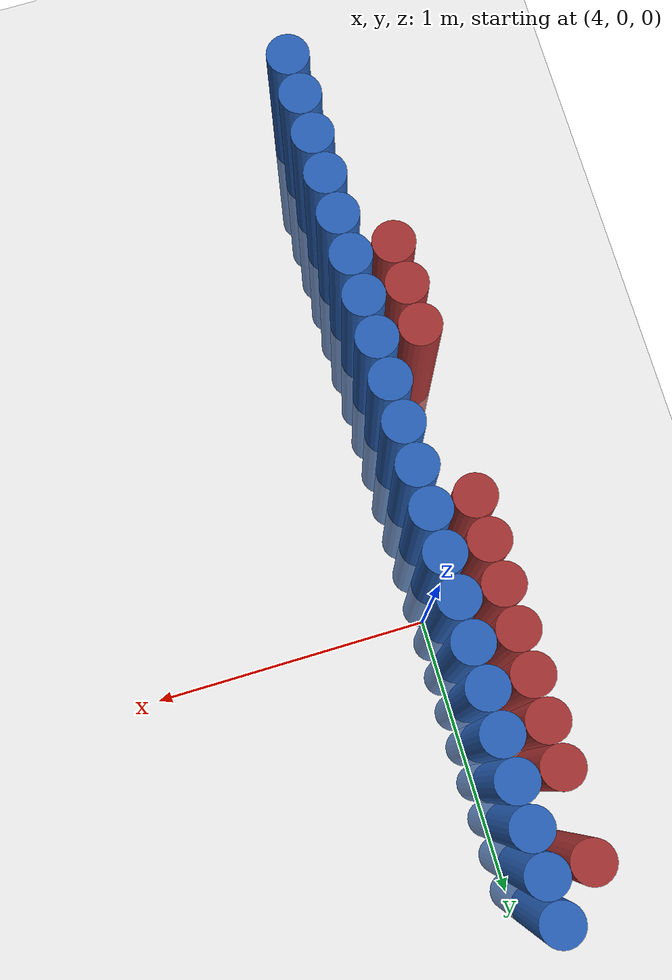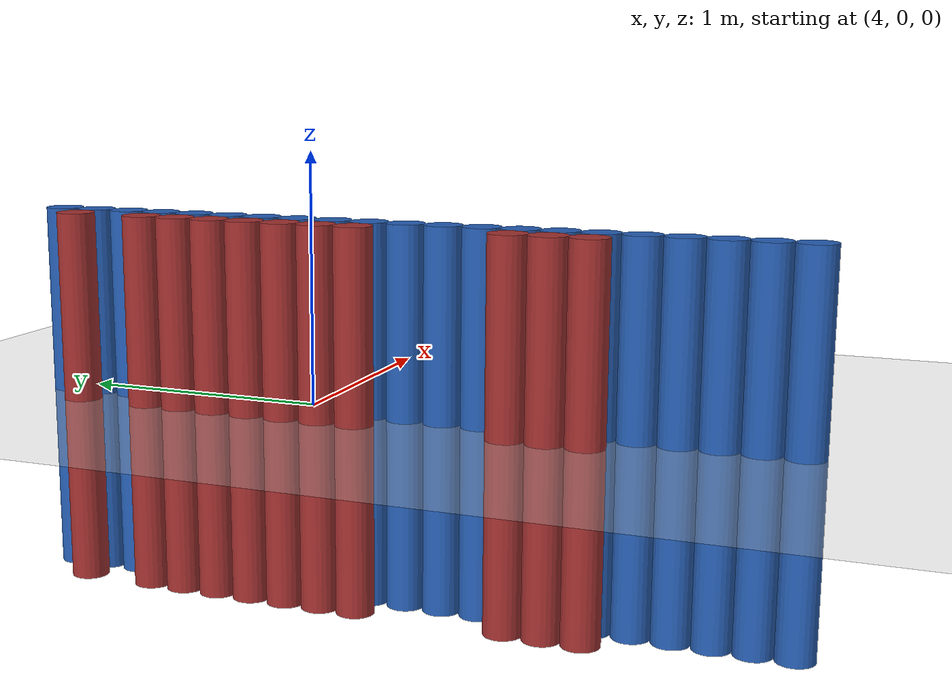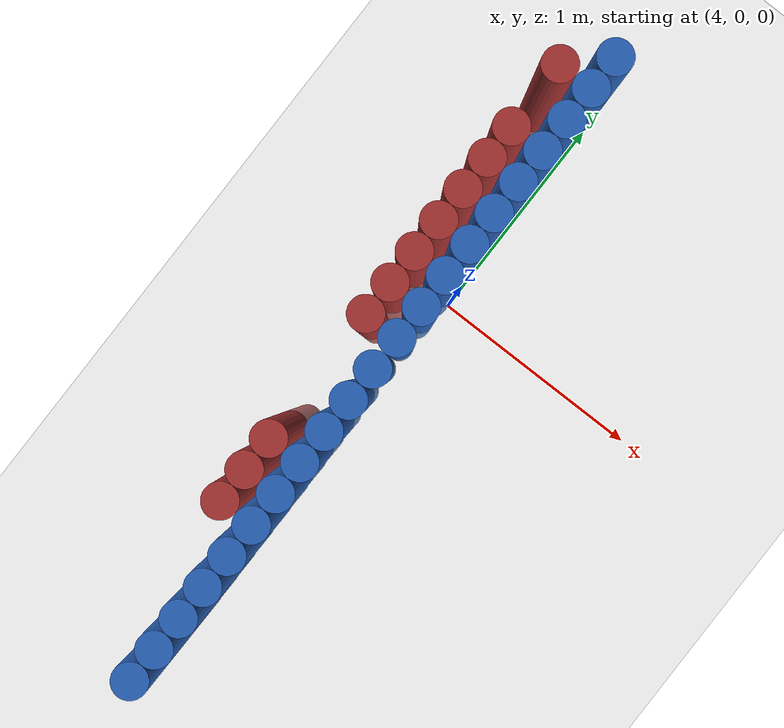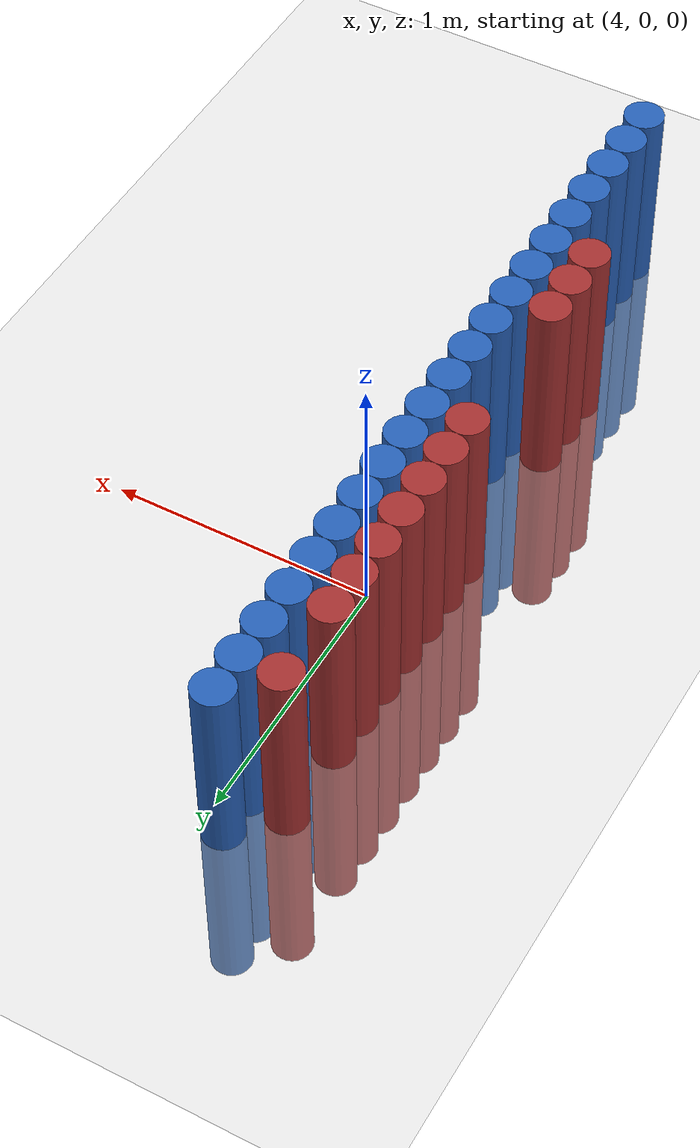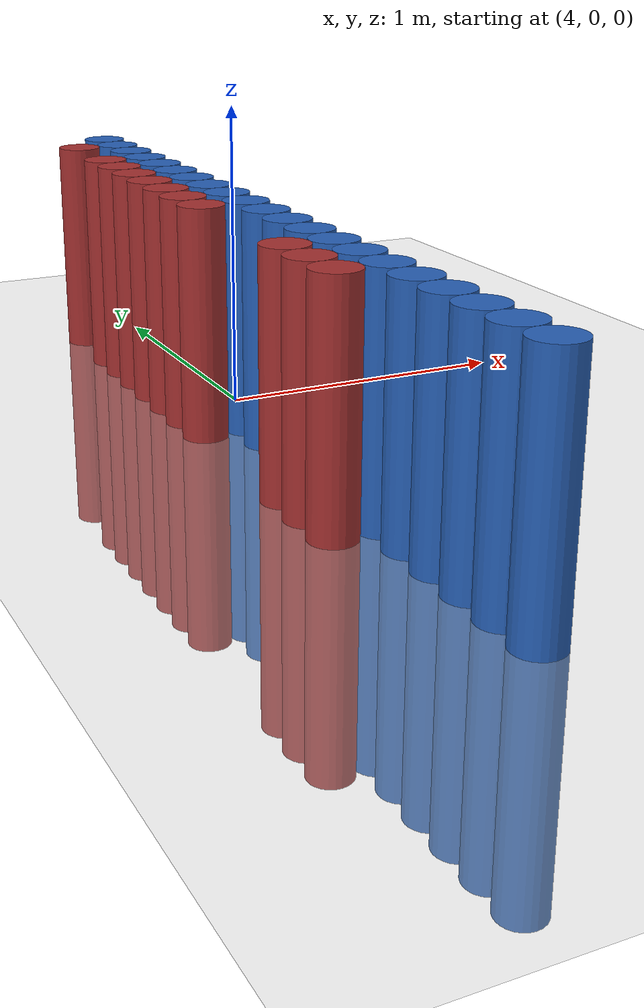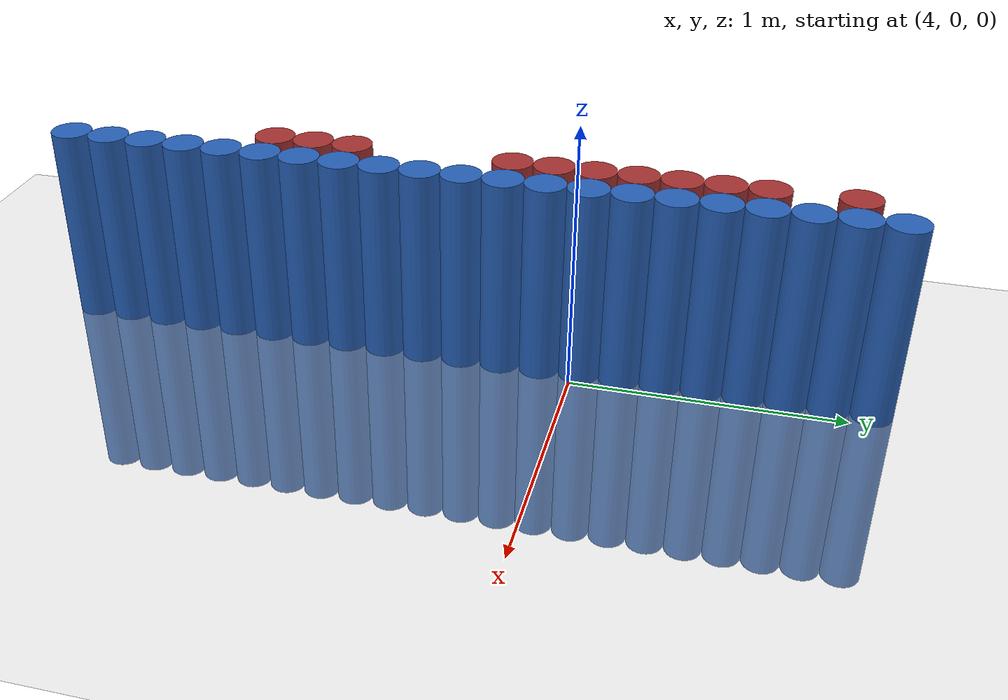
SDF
<sdf version="1.6">
 <world name="default">
  <model name="ground_plane">
   <static>1</static>
   <link name="link">
    <collision name="collision">
     <geometry><plane><normal>0 0 1</normal><size>100 100</size></plane></geometry>
     <surface><friction><ode><mu>100</mu><mu2>50</mu2></ode></friction></surface>
    </collision>
    <visual name="visual">
     <cast_shadows>0</cast_shadows>
     <geometry><plane><normal>0 0 1</normal><size>100 100</size></plane></geometry>
     <material>
      <script><uri>file://media/materials/scripts/gazebo.material</uri><name>Gazebo/Grey</name></script>
     </material>
    </visual>
   </link>
  </model>
  <model name="unit_cylinder_88">
   <static>1</static>
   <pose>3.925000 -1.925000 0.000000 0.000000 0.000000 0.000000</pose>
   <link name="link">
    <inertial>
     <mass>1</mass>
     <inertia><ixx>0.145833</ixx><ixy>0</ixy><ixz>0</ixz><iyy>0.145833</iyy><iyz>0</iyz><izz>0.125</izz></inertia>
    </inertial>
    <collision name="collision">
     <geometry><cylinder><radius>0.075000</radius><length>1.5</length></cylinder></geometry>
    </collision>
    <visual name="visual">
     <geometry><cylinder><radius>0.075000</radius><length>1.5</length></cylinder></geometry>
     <material>
      <ambient>0.152000 0.379000 0.720000 1</ambient>
      <diffuse>0.152000 0.379000 0.720000 1</diffuse>
     </material>
     <material>
      <script><name>Gazebo/Grey</name><uri>file://media/materials/scripts/gazebo.material</uri></script>
     </material>
    </visual>
   </link>
  </model>
  <model name="unit_cylinder_90">
   <static>1</static>
   <pose>3.925000 -1.775000 0.000000 0.000000 0.000000 0.000000</pose>
   <link name="link">
    <inertial>
     <mass>1</mass>
     <inertia><ixx>0.145833</ixx><ixy>0</ixy><ixz>0</ixz><iyy>0.145833</iyy><iyz>0</iyz><izz>0.125</izz></inertia>
    </inertial>
    <collision name="collision">
     <geometry><cylinder><radius>0.075000</radius><length>1.5</length></cylinder></geometry>
    </collision>
    <visual name="visual">
     <geometry><cylinder><radius>0.075000</radius><length>1.5</length></cylinder></geometry>
     <material>
      <ambient>0.152000 0.379000 0.720000 1</ambient>
      <diffuse>0.152000 0.379000 0.720000 1</diffuse>
     </material>
     <material>
      <script><name>Gazebo/Grey</name><uri>file://media/materials/scripts/gazebo.material</uri></script>
     </material>
    </visual>
   </link>
  </model>
  <model name="unit_cylinder_92">
   <static>1</static>
   <pose>3.925000 -1.625000 0.000000 0.000000 0.000000 0.000000</pose>
   <link name="link">
    <inertial>
     <mass>1</mass>
     <inertia><ixx>0.145833</ixx><ixy>0</ixy><ixz>0</ixz><iyy>0.145833</iyy><iyz>0</iyz><izz>0.125</izz></inertia>
    </inertial>
    <collision name="collision">
     <geometry><cylinder><radius>0.075000</radius><length>1.5</length></cylinder></geometry>
    </collision>
    <visual name="visual">
     <geometry><cylinder><radius>0.075000</radius><length>1.5</length></cylinder></geometry>
     <material>
      <ambient>0.152000 0.379000 0.720000 1</ambient>
      <diffuse>0.152000 0.379000 0.720000 1</diffuse>
     </material>
     <material>
      <script><name>Gazebo/Grey</name><uri>file://media/materials/scripts/gazebo.material</uri></script>
     </material>
    </visual>
   </link>
  </model>
  <model name="unit_cylinder_94">
   <static>1</static>
   <pose>3.925000 -1.475000 0.000000 0.000000 0.000000 0.000000</pose>
   <link name="link">
    <inertial>
     <mass>1</mass>
     <inertia><ixx>0.145833</ixx><ixy>0</ixy><ixz>0</ixz><iyy>0.145833</iyy><iyz>0</iyz><izz>0.125</izz></inertia>
    </inertial>
    <collision name="collision">
     <geometry><cylinder><radius>0.075000</radius><length>1.5</length></cylinder></geometry>
    </collision>
    <visual name="visual">
     <geometry><cylinder><radius>0.075000</radius><length>1.5</length></cylinder></geometry>
     <material>
      <ambient>0.152000 0.379000 0.720000 1</ambient>
      <diffuse>0.152000 0.379000 0.720000 1</diffuse>
     </material>
     <material>
      <script><name>Gazebo/Grey</name><uri>file://media/materials/scripts/gazebo.material</uri></script>
     </material>
    </visual>
   </link>
  </model>
  <model name="unit_cylinder_96">
   <static>1</static>
   <pose>3.925000 -1.325000 0.000000 0.000000 0.000000 0.000000</pose>
   <link name="link">
    <inertial>
     <mass>1</mass>
     <inertia><ixx>0.145833</ixx><ixy>0</ixy><ixz>0</ixz><iyy>0.145833</iyy><iyz>0</iyz><izz>0.125</izz></inertia>
    </inertial>
    <collision name="collision">
     <geometry><cylinder><radius>0.075000</radius><length>1.5</length></cylinder></geometry>
    </collision>
    <visual name="visual">
     <geometry><cylinder><radius>0.075000</radius><length>1.5</length></cylinder></geometry>
     <material>
      <ambient>0.152000 0.379000 0.720000 1</ambient>
      <diffuse>0.152000 0.379000 0.720000 1</diffuse>
     </material>
     <material>
      <script><name>Gazebo/Grey</name><uri>file://media/materials/scripts/gazebo.material</uri></script>
     </material>
    </visual>
   </link>
  </model>
  <model name="unit_cylinder_98">
   <static>1</static>
   <pose>3.925000 -1.175000 0.000000 0.000000 0.000000 0.000000</pose>
   <link name="link">
    <inertial>
     <mass>1</mass>
     <inertia><ixx>0.145833</ixx><ixy>0</ixy><ixz>0</ixz><iyy>0.145833</iyy><iyz>0</iyz><izz>0.125</izz></inertia>
    </inertial>
    <collision name="collision">
     <geometry><cylinder><radius>0.075000</radius><length>1.5</length></cylinder></geometry>
    </collision>
    <visual name="visual">
     <geometry><cylinder><radius>0.075000</radius><length>1.5</length></cylinder></geometry>
     <material>
      <ambient>0.152000 0.379000 0.720000 1</ambient>
      <diffuse>0.152000 0.379000 0.720000 1</diffuse>
     </material>
     <material>
      <script><name>Gazebo/Grey</name><uri>file://media/materials/scripts/gazebo.material</uri></script>
     </material>
    </visual>
   </link>
  </model>
  <model name="unit_cylinder_100">
   <static>1</static>
   <pose>3.925000 -1.025000 0.000000 0.000000 0.000000 0.000000</pose>
   <link name="link">
    <inertial>
     <mass>1</mass>
     <inertia><ixx>0.145833</ixx><ixy>0</ixy><ixz>0</ixz><iyy>0.145833</iyy><iyz>0</iyz><izz>0.125</izz></inertia>
    </inertial>
    <collision name="collision">
     <geometry><cylinder><radius>0.075000</radius><length>1.5</length></cylinder></geometry>
    </collision>
    <visual name="visual">
     <geometry><cylinder><radius>0.075000</radius><length>1.5</length></cylinder></geometry>
     <material>
      <ambient>0.152000 0.379000 0.720000 1</ambient>
      <diffuse>0.152000 0.379000 0.720000 1</diffuse>
     </material>
     <material>
      <script><name>Gazebo/Grey</name><uri>file://media/materials/scripts/gazebo.material</uri></script>
     </material>
    </visual>
   </link>
  </model>
  <model name="unit_cylinder_102">
   <static>1</static>
   <pose>3.925000 -0.875000 0.000000 0.000000 0.000000 0.000000</pose>
   <link name="link">
    <inertial>
     <mass>1</mass>
     <inertia><ixx>0.145833</ixx><ixy>0</ixy><ixz>0</ixz><iyy>0.145833</iyy><iyz>0</iyz><izz>0.125</izz></inertia>
    </inertial>
    <collision name="collision">
     <geometry><cylinder><radius>0.075000</radius><length>1.5</length></cylinder></geometry>
    </collision>
    <visual name="visual">
     <geometry><cylinder><radius>0.075000</radius><length>1.5</length></cylinder></geometry>
     <material>
      <ambient>0.152000 0.379000 0.720000 1</ambient>
      <diffuse>0.152000 0.379000 0.720000 1</diffuse>
     </material>
     <material>
      <script><name>Gazebo/Grey</name><uri>file://media/materials/scripts/gazebo.material</uri></script>
     </material>
    </visual>
   </link>
  </model>
  <model name="unit_cylinder_104">
   <static>1</static>
   <pose>3.925000 -0.725000 0.000000 0.000000 0.000000 0.000000</pose>
   <link name="link">
    <inertial>
     <mass>1</mass>
     <inertia><ixx>0.145833</ixx><ixy>0</ixy><ixz>0</ixz><iyy>0.145833</iyy><iyz>0</iyz><izz>0.125</izz></inertia>
    </inertial>
    <collision name="collision">
     <geometry><cylinder><radius>0.075000</radius><length>1.5</length></cylinder></geometry>
    </collision>
    <visual name="visual">
     <geometry><cylinder><radius>0.075000</radius><length>1.5</length></cylinder></geometry>
     <material>
      <ambient>0.152000 0.379000 0.720000 1</ambient>
      <diffuse>0.152000 0.379000 0.720000 1</diffuse>
     </material>
     <material>
      <script><name>Gazebo/Grey</name><uri>file://media/materials/scripts/gazebo.material</uri></script>
     </material>
    </visual>
   </link>
  </model>
  <model name="unit_cylinder_106">
   <static>1</static>
   <pose>3.925000 -0.575000 0.000000 0.000000 0.000000 0.000000</pose>
   <link name="link">
    <inertial>
     <mass>1</mass>
     <inertia><ixx>0.145833</ixx><ixy>0</ixy><ixz>0</ixz><iyy>0.145833</iyy><iyz>0</iyz><izz>0.125</izz></inertia>
    </inertial>
    <collision name="collision">
     <geometry><cylinder><radius>0.075000</radius><length>1.5</length></cylinder></geometry>
    </collision>
    <visual name="visual">
     <geometry><cylinder><radius>0.075000</radius><length>1.5</length></cylinder></geometry>
     <material>
      <ambient>0.152000 0.379000 0.720000 1</ambient>
      <diffuse>0.152000 0.379000 0.720000 1</diffuse>
     </material>
     <material>
      <script><name>Gazebo/Grey</name><uri>file://media/materials/scripts/gazebo.material</uri></script>
     </material>
    </visual>
   </link>
  </model>
  <model name="unit_cylinder_108">
   <static>1</static>
   <pose>3.925000 -0.425000 0.000000 0.000000 0.000000 0.000000</pose>
   <link name="link">
    <inertial>
     <mass>1</mass>
     <inertia><ixx>0.145833</ixx><ixy>0</ixy><ixz>0</ixz><iyy>0.145833</iyy><iyz>0</iyz><izz>0.125</izz></inertia>
    </inertial>
    <collision name="collision">
     <geometry><cylinder><radius>0.075000</radius><length>1.5</length></cylinder></geometry>
    </collision>
    <visual name="visual">
     <geometry><cylinder><radius>0.075000</radius><length>1.5</length></cylinder></geometry>
     <material>
      <ambient>0.152000 0.379000 0.720000 1</ambient>
      <diffuse>0.152000 0.379000 0.720000 1</diffuse>
     </material>
     <material>
      <script><name>Gazebo/Grey</name><uri>file://media/materials/scripts/gazebo.material</uri></script>
     </material>
    </visual>
   </link>
  </model>
  <model name="unit_cylinder_110">
   <static>1</static>
   <pose>3.925000 -0.275000 0.000000 0.000000 0.000000 0.000000</pose>
   <link name="link">
    <inertial>
     <mass>1</mass>
     <inertia><ixx>0.145833</ixx><ixy>0</ixy><ixz>0</ixz><iyy>0.145833</iyy><iyz>0</iyz><izz>0.125</izz></inertia>
    </inertial>
    <collision name="collision">
     <geometry><cylinder><radius>0.075000</radius><length>1.5</length></cylinder></geometry>
    </collision>
    <visual name="visual">
     <geometry><cylinder><radius>0.075000</radius><length>1.5</length></cylinder></geometry>
     <material>
      <ambient>0.152000 0.379000 0.720000 1</ambient>
      <diffuse>0.152000 0.379000 0.720000 1</diffuse>
     </material>
     <material>
      <script><name>Gazebo/Grey</name><uri>file://media/materials/scripts/gazebo.material</uri></script>
     </material>
    </visual>
   </link>
  </model>
  <model name="unit_cylinder_112">
   <static>1</static>
   <pose>3.925000 -0.125000 0.000000 0.000000 0.000000 0.000000</pose>
   <link name="link">
    <inertial>
     <mass>1</mass>
     <inertia><ixx>0.145833</ixx><ixy>0</ixy><ixz>0</ixz><iyy>0.145833</iyy><iyz>0</iyz><izz>0.125</izz></inertia>
    </inertial>
    <collision name="collision">
     <geometry><cylinder><radius>0.075000</radius><length>1.5</length></cylinder></geometry>
    </collision>
    <visual name="visual">
     <geometry><cylinder><radius>0.075000</radius><length>1.5</length></cylinder></geometry>
     <material>
      <ambient>0.152000 0.379000 0.720000 1</ambient>
      <diffuse>0.152000 0.379000 0.720000 1</diffuse>
     </material>
     <material>
      <script><name>Gazebo/Grey</name><uri>file://media/materials/scripts/gazebo.material</uri></script>
     </material>
    </visual>
   </link>
  </model>
  <model name="unit_cylinder_114">
   <static>1</static>
   <pose>3.925000 0.025000 0.000000 0.000000 0.000000 0.000000</pose>
   <link name="link">
    <inertial>
     <mass>1</mass>
     <inertia><ixx>0.145833</ixx><ixy>0</ixy><ixz>0</ixz><iyy>0.145833</iyy><iyz>0</iyz><izz>0.125</izz></inertia>
    </inertial>
    <collision name="collision">
     <geometry><cylinder><radius>0.075000</radius><length>1.5</length></cylinder></geometry>
    </collision>
    <visual name="visual">
     <geometry><cylinder><radius>0.075000</radius><length>1.5</length></cylinder></geometry>
     <material>
      <ambient>0.152000 0.379000 0.720000 1</ambient>
      <diffuse>0.152000 0.379000 0.720000 1</diffuse>
     </material>
     <material>
      <script><name>Gazebo/Grey</name><uri>file://media/materials/scripts/gazebo.material</uri></script>
     </material>
    </visual>
   </link>
  </model>
  <model name="unit_cylinder_116">
   <static>1</static>
   <pose>3.925000 0.175000 0.000000 0.000000 0.000000 0.000000</pose>
   <link name="link">
    <inertial>
     <mass>1</mass>
     <inertia><ixx>0.145833</ixx><ixy>0</ixy><ixz>0</ixz><iyy>0.145833</iyy><iyz>0</iyz><izz>0.125</izz></inertia>
    </inertial>
    <collision name="collision">
     <geometry><cylinder><radius>0.075000</radius><length>1.5</length></cylinder></geometry>
    </collision>
    <visual name="visual">
     <geometry><cylinder><radius>0.075000</radius><length>1.5</length></cylinder></geometry>
     <material>
      <ambient>0.152000 0.379000 0.720000 1</ambient>
      <diffuse>0.152000 0.379000 0.720000 1</diffuse>
     </material>
     <material>
      <script><name>Gazebo/Grey</name><uri>file://media/materials/scripts/gazebo.material</uri></script>
     </material>
    </visual>
   </link>
  </model>
  <model name="unit_cylinder_118">
   <static>1</static>
   <pose>3.925000 0.325000 0.000000 0.000000 0.000000 0.000000</pose>
   <link name="link">
    <inertial>
     <mass>1</mass>
     <inertia><ixx>0.145833</ixx><ixy>0</ixy><ixz>0</ixz><iyy>0.145833</iyy><iyz>0</iyz><izz>0.125</izz></inertia>
    </inertial>
    <collision name="collision">
     <geometry><cylinder><radius>0.075000</radius><length>1.5</length></cylinder></geometry>
    </collision>
    <visual name="visual">
     <geometry><cylinder><radius>0.075000</radius><length>1.5</length></cylinder></geometry>
     <material>
      <ambient>0.152000 0.379000 0.720000 1</ambient>
      <diffuse>0.152000 0.379000 0.720000 1</diffuse>
     </material>
     <material>
      <script><name>Gazebo/Grey</name><uri>file://media/materials/scripts/gazebo.material</uri></script>
     </material>
    </visual>
   </link>
  </model>
  <model name="unit_cylinder_120">
   <static>1</static>
   <pose>3.925000 0.475000 0.000000 0.000000 0.000000 0.000000</pose>
   <link name="link">
    <inertial>
     <mass>1</mass>
     <inertia><ixx>0.145833</ixx><ixy>0</ixy><ixz>0</ixz><iyy>0.145833</iyy><iyz>0</iyz><izz>0.125</izz></inertia>
    </inertial>
    <collision name="collision">
     <geometry><cylinder><radius>0.075000</radius><length>1.5</length></cylinder></geometry>
    </collision>
    <visual name="visual">
     <geometry><cylinder><radius>0.075000</radius><length>1.5</length></cylinder></geometry>
     <material>
      <ambient>0.152000 0.379000 0.720000 1</ambient>
      <diffuse>0.152000 0.379000 0.720000 1</diffuse>
     </material>
     <material>
      <script><name>Gazebo/Grey</name><uri>file://media/materials/scripts/gazebo.material</uri></script>
     </material>
    </visual>
   </link>
  </model>
  <model name="unit_cylinder_122">
   <static>1</static>
   <pose>3.925000 0.625000 0.000000 0.000000 0.000000 0.000000</pose>
   <link name="link">
    <inertial>
     <mass>1</mass>
     <inertia><ixx>0.145833</ixx><ixy>0</ixy><ixz>0</ixz><iyy>0.145833</iyy><iyz>0</iyz><izz>0.125</izz></inertia>
    </inertial>
    <collision name="collision">
     <geometry><cylinder><radius>0.075000</radius><length>1.5</length></cylinder></geometry>
    </collision>
    <visual name="visual">
     <geometry><cylinder><radius>0.075000</radius><length>1.5</length></cylinder></geometry>
     <material>
      <ambient>0.152000 0.379000 0.720000 1</ambient>
      <diffuse>0.152000 0.379000 0.720000 1</diffuse>
     </material>
     <material>
      <script><name>Gazebo/Grey</name><uri>file://media/materials/scripts/gazebo.material</uri></script>
     </material>
    </visual>
   </link>
  </model>
  <model name="unit_cylinder_124">
   <static>1</static>
   <pose>3.925000 0.775000 0.000000 0.000000 0.000000 0.000000</pose>
   <link name="link">
    <inertial>
     <mass>1</mass>
     <inertia><ixx>0.145833</ixx><ixy>0</ixy><ixz>0</ixz><iyy>0.145833</iyy><iyz>0</iyz><izz>0.125</izz></inertia>
    </inertial>
    <collision name="collision">
     <geometry><cylinder><radius>0.075000</radius><length>1.5</length></cylinder></geometry>
    </collision>
    <visual name="visual">
     <geometry><cylinder><radius>0.075000</radius><length>1.5</length></cylinder></geometry>
     <material>
      <ambient>0.152000 0.379000 0.720000 1</ambient>
      <diffuse>0.152000 0.379000 0.720000 1</diffuse>
     </material>
     <material>
      <script><name>Gazebo/Grey</name><uri>file://media/materials/scripts/gazebo.material</uri></script>
     </material>
    </visual>
   </link>
  </model>
  <model name="unit_cylinder_126">
   <static>1</static>
   <pose>3.925000 0.925000 0.000000 0.000000 0.000000 0.000000</pose>
   <link name="link">
    <inertial>
     <mass>1</mass>
     <inertia><ixx>0.145833</ixx><ixy>0</ixy><ixz>0</ixz><iyy>0.145833</iyy><iyz>0</iyz><izz>0.125</izz></inertia>
    </inertial>
    <collision name="collision">
     <geometry><cylinder><radius>0.075000</radius><length>1.5</length></cylinder></geometry>
    </collision>
    <visual name="visual">
     <geometry><cylinder><radius>0.075000</radius><length>1.5</length></cylinder></geometry>
     <material>
      <ambient>0.152000 0.379000 0.720000 1</ambient>
      <diffuse>0.152000 0.379000 0.720000 1</diffuse>
     </material>
     <material>
      <script><name>Gazebo/Grey</name><uri>file://media/materials/scripts/gazebo.material</uri></script>
     </material>
    </visual>
   </link>
  </model>
  <model name="unit_cylinder_128">
   <static>1</static>
   <pose>3.925000 1.075000 0.000000 0.000000 0.000000 0.000000</pose>
   <link name="link">
    <inertial>
     <mass>1</mass>
     <inertia><ixx>0.145833</ixx><ixy>0</ixy><ixz>0</ixz><iyy>0.145833</iyy><iyz>0</iyz><izz>0.125</izz></inertia>
    </inertial>
    <collision name="collision">
     <geometry><cylinder><radius>0.075000</radius><length>1.5</length></cylinder></geometry>
    </collision>
    <visual name="visual">
     <geometry><cylinder><radius>0.075000</radius><length>1.5</length></cylinder></geometry>
     <material>
      <ambient>0.152000 0.379000 0.720000 1</ambient>
      <diffuse>0.152000 0.379000 0.720000 1</diffuse>
     </material>
     <material>
      <script><name>Gazebo/Grey</name><uri>file://media/materials/scripts/gazebo.material</uri></script>
     </material>
    </visual>
   </link>
  </model>
  <model name="unit_cylinder_488">
   <static>1</static>
   <pose>3.775000 -1.175000 0.000000 0.000000 0.000000 0.000000</pose>
   <link name="link">
    <inertial>
     <mass>1</mass>
     <inertia><ixx>0.145833</ixx><ixy>0</ixy><ixz>0</ixz><iyy>0.145833</iyy><iyz>0</iyz><izz>0.125</izz></inertia>
    </inertial>
    <collision name="collision">
     <geometry><cylinder><radius>0.075000</radius><length>1.5</length></cylinder></geometry>
    </collision>
    <visual name="visual">
     <geometry><cylinder><radius>0.075000</radius><length>1.5</length></cylinder></geometry>
     <material>
      <ambient>0.648000 0.192000 0.192000 1</ambient>
      <diffuse>0.648000 0.192000 0.192000 1</diffuse>
     </material>
     <material>
      <script><name>Gazebo/Grey</name><uri>file://media/materials/scripts/gazebo.material</uri></script>
     </material>
    </visual>
   </link>
  </model>
  <model name="unit_cylinder_489">
   <static>1</static>
   <pose>3.775000 -1.025000 0.000000 0.000000 0.000000 0.000000</pose>
   <link name="link">
    <inertial>
     <mass>1</mass>
     <inertia><ixx>0.145833</ixx><ixy>0</ixy><ixz>0</ixz><iyy>0.145833</iyy><iyz>0</iyz><izz>0.125</izz></inertia>
    </inertial>
    <collision name="collision">
     <geometry><cylinder><radius>0.075000</radius><length>1.5</length></cylinder></geometry>
    </collision>
    <visual name="visual">
     <geometry><cylinder><radius>0.075000</radius><length>1.5</length></cylinder></geometry>
     <material>
      <ambient>0.648000 0.192000 0.192000 1</ambient>
      <diffuse>0.648000 0.192000 0.192000 1</diffuse>
     </material>
     <material>
      <script><name>Gazebo/Grey</name><uri>file://media/materials/scripts/gazebo.material</uri></script>
     </material>
    </visual>
   </link>
  </model>
  <model name="unit_cylinder_490">
   <static>1</static>
   <pose>3.775000 -0.875000 0.000000 0.000000 0.000000 0.000000</pose>
   <link name="link">
    <inertial>
     <mass>1</mass>
     <inertia><ixx>0.145833</ixx><ixy>0</ixy><ixz>0</ixz><iyy>0.145833</iyy><iyz>0</iyz><izz>0.125</izz></inertia>
    </inertial>
    <collision name="collision">
     <geometry><cylinder><radius>0.075000</radius><length>1.5</length></cylinder></geometry>
    </collision>
    <visual name="visual">
     <geometry><cylinder><radius>0.075000</radius><length>1.5</length></cylinder></geometry>
     <material>
      <ambient>0.648000 0.192000 0.192000 1</ambient>
      <diffuse>0.648000 0.192000 0.192000 1</diffuse>
     </material>
     <material>
      <script><name>Gazebo/Grey</name><uri>file://media/materials/scripts/gazebo.material</uri></script>
     </material>
    </visual>
   </link>
  </model>
  <model name="unit_cylinder_491">
   <static>1</static>
   <pose>3.775000 -0.275000 0.000000 0.000000 0.000000 0.000000</pose>
   <link name="link">
    <inertial>
     <mass>1</mass>
     <inertia><ixx>0.145833</ixx><ixy>0</ixy><ixz>0</ixz><iyy>0.145833</iyy><iyz>0</iyz><izz>0.125</izz></inertia>
    </inertial>
    <collision name="collision">
     <geometry><cylinder><radius>0.075000</radius><length>1.5</length></cylinder></geometry>
    </collision>
    <visual name="visual">
     <geometry><cylinder><radius>0.075000</radius><length>1.5</length></cylinder></geometry>
     <material>
      <ambient>0.648000 0.192000 0.192000 1</ambient>
      <diffuse>0.648000 0.192000 0.192000 1</diffuse>
     </material>
     <material>
      <script><name>Gazebo/Grey</name><uri>file://media/materials/scripts/gazebo.material</uri></script>
     </material>
    </visual>
   </link>
  </model>
  <model name="unit_cylinder_492">
   <static>1</static>
   <pose>3.775000 -0.125000 0.000000 0.000000 0.000000 0.000000</pose>
   <link name="link">
    <inertial>
     <mass>1</mass>
     <inertia><ixx>0.145833</ixx><ixy>0</ixy><ixz>0</ixz><iyy>0.145833</iyy><iyz>0</iyz><izz>0.125</izz></inertia>
    </inertial>
    <collision name="collision">
     <geometry><cylinder><radius>0.075000</radius><length>1.5</length></cylinder></geometry>
    </collision>
    <visual name="visual">
     <geometry><cylinder><radius>0.075000</radius><length>1.5</length></cylinder></geometry>
     <material>
      <ambient>0.648000 0.192000 0.192000 1</ambient>
      <diffuse>0.648000 0.192000 0.192000 1</diffuse>
     </material>
     <material>
      <script><name>Gazebo/Grey</name><uri>file://media/materials/scripts/gazebo.material</uri></script>
     </material>
    </visual>
   </link>
  </model>
  <model name="unit_cylinder_493">
   <static>1</static>
   <pose>3.775000 0.025000 0.000000 0.000000 0.000000 0.000000</pose>
   <link name="link">
    <inertial>
     <mass>1</mass>
     <inertia><ixx>0.145833</ixx><ixy>0</ixy><ixz>0</ixz><iyy>0.145833</iyy><iyz>0</iyz><izz>0.125</izz></inertia>
    </inertial>
    <collision name="collision">
     <geometry><cylinder><radius>0.075000</radius><length>1.5</length></cylinder></geometry>
    </collision>
    <visual name="visual">
     <geometry><cylinder><radius>0.075000</radius><length>1.5</length></cylinder></geometry>
     <material>
      <ambient>0.648000 0.192000 0.192000 1</ambient>
      <diffuse>0.648000 0.192000 0.192000 1</diffuse>
     </material>
     <material>
      <script><name>Gazebo/Grey</name><uri>file://media/materials/scripts/gazebo.material</uri></script>
     </material>
    </visual>
   </link>
  </model>
  <model name="unit_cylinder_494">
   <static>1</static>
   <pose>3.775000 0.175000 0.000000 0.000000 0.000000 0.000000</pose>
   <link name="link">
    <inertial>
     <mass>1</mass>
     <inertia><ixx>0.145833</ixx><ixy>0</ixy><ixz>0</ixz><iyy>0.145833</iyy><iyz>0</iyz><izz>0.125</izz></inertia>
    </inertial>
    <collision name="collision">
     <geometry><cylinder><radius>0.075000</radius><length>1.5</length></cylinder></geometry>
    </collision>
    <visual name="visual">
     <geometry><cylinder><radius>0.075000</radius><length>1.5</length></cylinder></geometry>
     <material>
      <ambient>0.648000 0.192000 0.192000 1</ambient>
      <diffuse>0.648000 0.192000 0.192000 1</diffuse>
     </material>
     <material>
      <script><name>Gazebo/Grey</name><uri>file://media/materials/scripts/gazebo.material</uri></script>
     </material>
    </visual>
   </link>
  </model>
  <model name="unit_cylinder_495">
   <static>1</static>
   <pose>3.775000 0.325000 0.000000 0.000000 0.000000 0.000000</pose>
   <link name="link">
    <inertial>
     <mass>1</mass>
     <inertia><ixx>0.145833</ixx><ixy>0</ixy><ixz>0</ixz><iyy>0.145833</iyy><iyz>0</iyz><izz>0.125</izz></inertia>
    </inertial>
    <collision name="collision">
     <geometry><cylinder><radius>0.075000</radius><length>1.5</length></cylinder></geometry>
    </collision>
    <visual name="visual">
     <geometry><cylinder><radius>0.075000</radius><length>1.5</length></cylinder></geometry>
     <material>
      <ambient>0.648000 0.192000 0.192000 1</ambient>
      <diffuse>0.648000 0.192000 0.192000 1</diffuse>
     </material>
     <material>
      <script><name>Gazebo/Grey</name><uri>file://media/materials/scripts/gazebo.material</uri></script>
     </material>
    </visual>
   </link>
  </model>
  <model name="unit_cylinder_496">
   <static>1</static>
   <pose>3.775000 0.475000 0.000000 0.000000 0.000000 0.000000</pose>
   <link name="link">
    <inertial>
     <mass>1</mass>
     <inertia><ixx>0.145833</ixx><ixy>0</ixy><ixz>0</ixz><iyy>0.145833</iyy><iyz>0</iyz><izz>0.125</izz></inertia>
    </inertial>
    <collision name="collision">
     <geometry><cylinder><radius>0.075000</radius><length>1.5</length></cylinder></geometry>
    </collision>
    <visual name="visual">
     <geometry><cylinder><radius>0.075000</radius><length>1.5</length></cylinder></geometry>
     <material>
      <ambient>0.648000 0.192000 0.192000 1</ambient>
      <diffuse>0.648000 0.192000 0.192000 1</diffuse>
     </material>
     <material>
      <script><name>Gazebo/Grey</name><uri>file://media/materials/scripts/gazebo.material</uri></script>
     </material>
    </visual>
   </link>
  </model>
  <model name="unit_cylinder_497">
   <static>1</static>
   <pose>3.775000 0.625000 0.000000 0.000000 0.000000 0.000000</pose>
   <link name="link">
    <inertial>
     <mass>1</mass>
     <inertia><ixx>0.145833</ixx><ixy>0</ixy><ixz>0</ixz><iyy>0.145833</iyy><iyz>0</iyz><izz>0.125</izz></inertia>
    </inertial>
    <collision name="collision">
     <geometry><cylinder><radius>0.075000</radius><length>1.5</length></cylinder></geometry>
    </collision>
    <visual name="visual">
     <geometry><cylinder><radius>0.075000</radius><length>1.5</length></cylinder></geometry>
     <material>
      <ambient>0.648000 0.192000 0.192000 1</ambient>
      <diffuse>0.648000 0.192000 0.192000 1</diffuse>
     </material>
     <material>
      <script><name>Gazebo/Grey</name><uri>file://media/materials/scripts/gazebo.material</uri></script>
     </material>
    </visual>
   </link>
  </model>
  <model name="unit_cylinder_498">
   <static>1</static>
   <pose>3.775000 0.925000 0.000000 0.000000 0.000000 0.000000</pose>
   <link name="link">
    <inertial>
     <mass>1</mass>
     <inertia><ixx>0.145833</ixx><ixy>0</ixy><ixz>0</ixz><iyy>0.145833</iyy><iyz>0</iyz><izz>0.125</izz></inertia>
    </inertial>
    <collision name="collision">
     <geometry><cylinder><radius>0.075000</radius><length>1.5</length></cylinder></geometry>
    </collision>
    <visual name="visual">
     <geometry><cylinder><radius>0.075000</radius><length>1.5</length></cylinder></geometry>
     <material>
      <ambient>0.648000 0.192000 0.192000 1</ambient>
      <diffuse>0.648000 0.192000 0.192000 1</diffuse>
     </material>
     <material>
      <script><name>Gazebo/Grey</name><uri>file://media/materials/scripts/gazebo.material</uri></script>
     </material>
    </visual>
   </link>
  </model>
  <model name="unit_cylinder_518">
   <static>1</static>
   <pose>3.925000 -1.925000 0.000000 0.000000 0.000000 0.000000</pose>
   <link name="link">
    <inertial>
     <mass>1</mass>
     <inertia><ixx>0.145833</ixx><ixy>0</ixy><ixz>0</ixz><iyy>0.145833</iyy><iyz>0</iyz><izz>0.125</izz></inertia>
    </inertial>
    <collision name="collision">
     <geometry><cylinder><radius>0.075000</radius><length>1.5</length></cylinder></geometry>
    </collision>
    <visual name="visual">
     <geometry><cylinder><radius>0.075000</radius><length>1.5</length></cylinder></geometry>
     <material>
      <ambient>0.152000 0.379000 0.720000 1</ambient>
      <diffuse>0.152000 0.379000 0.720000 1</diffuse>
     </material>
     <material>
      <script><name>Gazebo/Grey</name><uri>file://media/materials/scripts/gazebo.material</uri></script>
     </material>
    </visual>
   </link>
  </model>
  <model name="unit_cylinder_519">
   <static>1</static>
   <pose>3.925000 -1.775000 0.000000 0.000000 0.000000 0.000000</pose>
   <link name="link">
    <inertial>
     <mass>1</mass>
     <inertia><ixx>0.145833</ixx><ixy>0</ixy><ixz>0</ixz><iyy>0.145833</iyy><iyz>0</iyz><izz>0.125</izz></inertia>
    </inertial>
    <collision name="collision">
     <geometry><cylinder><radius>0.075000</radius><length>1.5</length></cylinder></geometry>
    </collision>
    <visual name="visual">
     <geometry><cylinder><radius>0.075000</radius><length>1.5</length></cylinder></geometry>
     <material>
      <ambient>0.152000 0.379000 0.720000 1</ambient>
      <diffuse>0.152000 0.379000 0.720000 1</diffuse>
     </material>
     <material>
      <script><name>Gazebo/Grey</name><uri>file://media/materials/scripts/gazebo.material</uri></script>
     </material>
    </visual>
   </link>
  </model>
  <model name="unit_cylinder_520">
   <static>1</static>
   <pose>3.925000 -1.625000 0.000000 0.000000 0.000000 0.000000</pose>
   <link name="link">
    <inertial>
     <mass>1</mass>
     <inertia><ixx>0.145833</ixx><ixy>0</ixy><ixz>0</ixz><iyy>0.145833</iyy><iyz>0</iyz><izz>0.125</izz></inertia>
    </inertial>
    <collision name="collision">
     <geometry><cylinder><radius>0.075000</radius><length>1.5</length></cylinder></geometry>
    </collision>
    <visual name="visual">
     <geometry><cylinder><radius>0.075000</radius><length>1.5</length></cylinder></geometry>
     <material>
      <ambient>0.152000 0.379000 0.720000 1</ambient>
      <diffuse>0.152000 0.379000 0.720000 1</diffuse>
     </material>
     <material>
      <script><name>Gazebo/Grey</name><uri>file://media/materials/scripts/gazebo.material</uri></script>
     </material>
    </visual>
   </link>
  </model>
  <model name="unit_cylinder_521">
   <static>1</static>
   <pose>3.925000 -1.475000 0.000000 0.000000 0.000000 0.000000</pose>
   <link name="link">
    <inertial>
     <mass>1</mass>
     <inertia><ixx>0.145833</ixx><ixy>0</ixy><ixz>0</ixz><iyy>0.145833</iyy><iyz>0</iyz><izz>0.125</izz></inertia>
    </inertial>
    <collision name="collision">
     <geometry><cylinder><radius>0.075000</radius><length>1.5</length></cylinder></geometry>
    </collision>
    <visual name="visual">
     <geometry><cylinder><radius>0.075000</radius><length>1.5</length></cylinder></geometry>
     <material>
      <ambient>0.152000 0.379000 0.720000 1</ambient>
      <diffuse>0.152000 0.379000 0.720000 1</diffuse>
     </material>
     <material>
      <script><name>Gazebo/Grey</name><uri>file://media/materials/scripts/gazebo.material</uri></script>
     </material>
    </visual>
   </link>
  </model>
  <model name="unit_cylinder_522">
   <static>1</static>
   <pose>3.925000 -1.325000 0.000000 0.000000 0.000000 0.000000</pose>
   <link name="link">
    <inertial>
     <mass>1</mass>
     <inertia><ixx>0.145833</ixx><ixy>0</ixy><ixz>0</ixz><iyy>0.145833</iyy><iyz>0</iyz><izz>0.125</izz></inertia>
    </inertial>
    <collision name="collision">
     <geometry><cylinder><radius>0.075000</radius><length>1.5</length></cylinder></geometry>
    </collision>
    <visual name="visual">
     <geometry><cylinder><radius>0.075000</radius><length>1.5</length></cylinder></geometry>
     <material>
      <ambient>0.152000 0.379000 0.720000 1</ambient>
      <diffuse>0.152000 0.379000 0.720000 1</diffuse>
     </material>
     <material>
      <script><name>Gazebo/Grey</name><uri>file://media/materials/scripts/gazebo.material</uri></script>
     </material>
    </visual>
   </link>
  </model>
  <model name="unit_cylinder_523">
   <static>1</static>
   <pose>3.925000 -1.175000 0.000000 0.000000 0.000000 0.000000</pose>
   <link name="link">
    <inertial>
     <mass>1</mass>
     <inertia><ixx>0.145833</ixx><ixy>0</ixy><ixz>0</ixz><iyy>0.145833</iyy><iyz>0</iyz><izz>0.125</izz></inertia>
    </inertial>
    <collision name="collision">
     <geometry><cylinder><radius>0.075000</radius><length>1.5</length></cylinder></geometry>
    </collision>
    <visual name="visual">
     <geometry><cylinder><radius>0.075000</radius><length>1.5</length></cylinder></geometry>
     <material>
      <ambient>0.152000 0.379000 0.720000 1</ambient>
      <diffuse>0.152000 0.379000 0.720000 1</diffuse>
     </material>
     <material>
      <script><name>Gazebo/Grey</name><uri>file://media/materials/scripts/gazebo.material</uri></script>
     </material>
    </visual>
   </link>
  </model>
  <model name="unit_cylinder_524">
   <static>1</static>
   <pose>3.925000 -1.025000 0.000000 0.000000 0.000000 0.000000</pose>
   <link name="link">
    <inertial>
     <mass>1</mass>
     <inertia><ixx>0.145833</ixx><ixy>0</ixy><ixz>0</ixz><iyy>0.145833</iyy><iyz>0</iyz><izz>0.125</izz></inertia>
    </inertial>
    <collision name="collision">
     <geometry><cylinder><radius>0.075000</radius><length>1.5</length></cylinder></geometry>
    </collision>
    <visual name="visual">
     <geometry><cylinder><radius>0.075000</radius><length>1.5</length></cylinder></geometry>
     <material>
      <ambient>0.152000 0.379000 0.720000 1</ambient>
      <diffuse>0.152000 0.379000 0.720000 1</diffuse>
     </material>
     <material>
      <script><name>Gazebo/Grey</name><uri>file://media/materials/scripts/gazebo.material</uri></script>
     </material>
    </visual>
   </link>
  </model>
  <model name="unit_cylinder_525">
   <static>1</static>
   <pose>3.925000 -0.875000 0.000000 0.000000 0.000000 0.000000</pose>
   <link name="link">
    <inertial>
     <mass>1</mass>
     <inertia><ixx>0.145833</ixx><ixy>0</ixy><ixz>0</ixz><iyy>0.145833</iyy><iyz>0</iyz><izz>0.125</izz></inertia>
    </inertial>
    <collision name="collision">
     <geometry><cylinder><radius>0.075000</radius><length>1.5</length></cylinder></geometry>
    </collision>
    <visual name="visual">
     <geometry><cylinder><radius>0.075000</radius><length>1.5</length></cylinder></geometry>
     <material>
      <ambient>0.152000 0.379000 0.720000 1</ambient>
      <diffuse>0.152000 0.379000 0.720000 1</diffuse>
     </material>
     <material>
      <script><name>Gazebo/Grey</name><uri>file://media/materials/scripts/gazebo.material</uri></script>
     </material>
    </visual>
   </link>
  </model>
  <model name="unit_cylinder_526">
   <static>1</static>
   <pose>3.925000 -0.725000 0.000000 0.000000 0.000000 0.000000</pose>
   <link name="link">
    <inertial>
     <mass>1</mass>
     <inertia><ixx>0.145833</ixx><ixy>0</ixy><ixz>0</ixz><iyy>0.145833</iyy><iyz>0</iyz><izz>0.125</izz></inertia>
    </inertial>
    <collision name="collision">
     <geometry><cylinder><radius>0.075000</radius><length>1.5</length></cylinder></geometry>
    </collision>
    <visual name="visual">
     <geometry><cylinder><radius>0.075000</radius><length>1.5</length></cylinder></geometry>
     <material>
      <ambient>0.152000 0.379000 0.720000 1</ambient>
      <diffuse>0.152000 0.379000 0.720000 1</diffuse>
     </material>
     <material>
      <script><name>Gazebo/Grey</name><uri>file://media/materials/scripts/gazebo.material</uri></script>
     </material>
    </visual>
   </link>
  </model>
  <model name="unit_cylinder_527">
   <static>1</static>
   <pose>3.925000 -0.575000 0.000000 0.000000 0.000000 0.000000</pose>
   <link name="link">
    <inertial>
     <mass>1</mass>
     <inertia><ixx>0.145833</ixx><ixy>0</ixy><ixz>0</ixz><iyy>0.145833</iyy><iyz>0</iyz><izz>0.125</izz></inertia>
    </inertial>
    <collision name="collision">
     <geometry><cylinder><radius>0.075000</radius><length>1.5</length></cylinder></geometry>
    </collision>
    <visual name="visual">
     <geometry><cylinder><radius>0.075000</radius><length>1.5</length></cylinder></geometry>
     <material>
      <ambient>0.152000 0.379000 0.720000 1</ambient>
      <diffuse>0.152000 0.379000 0.720000 1</diffuse>
     </material>
     <material>
      <script><name>Gazebo/Grey</name><uri>file://media/materials/scripts/gazebo.material</uri></script>
     </material>
    </visual>
   </link>
  </model>
  <model name="unit_cylinder_528">
   <static>1</static>
   <pose>3.925000 -0.425000 0.000000 0.000000 0.000000 0.000000</pose>
   <link name="link">
    <inertial>
     <mass>1</mass>
     <inertia><ixx>0.145833</ixx><ixy>0</ixy><ixz>0</ixz><iyy>0.145833</iyy><iyz>0</iyz><izz>0.125</izz></inertia>
    </inertial>
    <collision name="collision">
     <geometry><cylinder><radius>0.075000</radius><length>1.5</length></cylinder></geometry>
    </collision>
    <visual name="visual">
     <geometry><cylinder><radius>0.075000</radius><length>1.5</length></cylinder></geometry>
     <material>
      <ambient>0.152000 0.379000 0.720000 1</ambient>
      <diffuse>0.152000 0.379000 0.720000 1</diffuse>
     </material>
     <material>
      <script><name>Gazebo/Grey</name><uri>file://media/materials/scripts/gazebo.material</uri></script>
     </material>
    </visual>
   </link>
  </model>
  <model name="unit_cylinder_529">
   <static>1</static>
   <pose>3.925000 -0.275000 0.000000 0.000000 0.000000 0.000000</pose>
   <link name="link">
    <inertial>
     <mass>1</mass>
     <inertia><ixx>0.145833</ixx><ixy>0</ixy><ixz>0</ixz><iyy>0.145833</iyy><iyz>0</iyz><izz>0.125</izz></inertia>
    </inertial>
    <collision name="collision">
     <geometry><cylinder><radius>0.075000</radius><length>1.5</length></cylinder></geometry>
    </collision>
    <visual name="visual">
     <geometry><cylinder><radius>0.075000</radius><length>1.5</length></cylinder></geometry>
     <material>
      <ambient>0.152000 0.379000 0.720000 1</ambient>
      <diffuse>0.152000 0.379000 0.720000 1</diffuse>
     </material>
     <material>
      <script><name>Gazebo/Grey</name><uri>file://media/materials/scripts/gazebo.material</uri></script>
     </material>
    </visual>
   </link>
  </model>
  <model name="unit_cylinder_530">
   <static>1</static>
   <pose>3.925000 -0.125000 0.000000 0.000000 0.000000 0.000000</pose>
   <link name="link">
    <inertial>
     <mass>1</mass>
     <inertia><ixx>0.145833</ixx><ixy>0</ixy><ixz>0</ixz><iyy>0.145833</iyy><iyz>0</iyz><izz>0.125</izz></inertia>
    </inertial>
    <collision name="collision">
     <geometry><cylinder><radius>0.075000</radius><length>1.5</length></cylinder></geometry>
    </collision>
    <visual name="visual">
     <geometry><cylinder><radius>0.075000</radius><length>1.5</length></cylinder></geometry>
     <material>
      <ambient>0.152000 0.379000 0.720000 1</ambient>
      <diffuse>0.152000 0.379000 0.720000 1</diffuse>
     </material>
     <material>
      <script><name>Gazebo/Grey</name><uri>file://media/materials/scripts/gazebo.material</uri></script>
     </material>
    </visual>
   </link>
  </model>
  <model name="unit_cylinder_531">
   <static>1</static>
   <pose>3.925000 0.025000 0.000000 0.000000 0.000000 0.000000</pose>
   <link name="link">
    <inertial>
     <mass>1</mass>
     <inertia><ixx>0.145833</ixx><ixy>0</ixy><ixz>0</ixz><iyy>0.145833</iyy><iyz>0</iyz><izz>0.125</izz></inertia>
    </inertial>
    <collision name="collision">
     <geometry><cylinder><radius>0.075000</radius><length>1.5</length></cylinder></geometry>
    </collision>
    <visual name="visual">
     <geometry><cylinder><radius>0.075000</radius><length>1.5</length></cylinder></geometry>
     <material>
      <ambient>0.152000 0.379000 0.720000 1</ambient>
      <diffuse>0.152000 0.379000 0.720000 1</diffuse>
     </material>
     <material>
      <script><name>Gazebo/Grey</name><uri>file://media/materials/scripts/gazebo.material</uri></script>
     </material>
    </visual>
   </link>
  </model>
  <model name="unit_cylinder_532">
   <static>1</static>
   <pose>3.925000 0.175000 0.000000 0.000000 0.000000 0.000000</pose>
   <link name="link">
    <inertial>
     <mass>1</mass>
     <inertia><ixx>0.145833</ixx><ixy>0</ixy><ixz>0</ixz><iyy>0.145833</iyy><iyz>0</iyz><izz>0.125</izz></inertia>
    </inertial>
    <collision name="collision">
     <geometry><cylinder><radius>0.075000</radius><length>1.5</length></cylinder></geometry>
    </collision>
    <visual name="visual">
     <geometry><cylinder><radius>0.075000</radius><length>1.5</length></cylinder></geometry>
     <material>
      <ambient>0.152000 0.379000 0.720000 1</ambient>
      <diffuse>0.152000 0.379000 0.720000 1</diffuse>
     </material>
     <material>
      <script><name>Gazebo/Grey</name><uri>file://media/materials/scripts/gazebo.material</uri></script>
     </material>
    </visual>
   </link>
  </model>
  <model name="unit_cylinder_533">
   <static>1</static>
   <pose>3.925000 0.325000 0.000000 0.000000 0.000000 0.000000</pose>
   <link name="link">
    <inertial>
     <mass>1</mass>
     <inertia><ixx>0.145833</ixx><ixy>0</ixy><ixz>0</ixz><iyy>0.145833</iyy><iyz>0</iyz><izz>0.125</izz></inertia>
    </inertial>
    <collision name="collision">
     <geometry><cylinder><radius>0.075000</radius><length>1.5</length></cylinder></geometry>
    </collision>
    <visual name="visual">
     <geometry><cylinder><radius>0.075000</radius><length>1.5</length></cylinder></geometry>
     <material>
      <ambient>0.152000 0.379000 0.720000 1</ambient>
      <diffuse>0.152000 0.379000 0.720000 1</diffuse>
     </material>
     <material>
      <script><name>Gazebo/Grey</name><uri>file://media/materials/scripts/gazebo.material</uri></script>
     </material>
    </visual>
   </link>
  </model>
  <model name="unit_cylinder_534">
   <static>1</static>
   <pose>3.925000 0.475000 0.000000 0.000000 0.000000 0.000000</pose>
   <link name="link">
    <inertial>
     <mass>1</mass>
     <inertia><ixx>0.145833</ixx><ixy>0</ixy><ixz>0</ixz><iyy>0.145833</iyy><iyz>0</iyz><izz>0.125</izz></inertia>
    </inertial>
    <collision name="collision">
     <geometry><cylinder><radius>0.075000</radius><length>1.5</length></cylinder></geometry>
    </collision>
    <visual name="visual">
     <geometry><cylinder><radius>0.075000</radius><length>1.5</length></cylinder></geometry>
     <material>
      <ambient>0.152000 0.379000 0.720000 1</ambient>
      <diffuse>0.152000 0.379000 0.720000 1</diffuse>
     </material>
     <material>
      <script><name>Gazebo/Grey</name><uri>file://media/materials/scripts/gazebo.material</uri></script>
     </material>
    </visual>
   </link>
  </model>
  <model name="unit_cylinder_535">
   <static>1</static>
   <pose>3.925000 0.625000 0.000000 0.000000 0.000000 0.000000</pose>
   <link name="link">
    <inertial>
     <mass>1</mass>
     <inertia><ixx>0.145833</ixx><ixy>0</ixy><ixz>0</ixz><iyy>0.145833</iyy><iyz>0</iyz><izz>0.125</izz></inertia>
    </inertial>
    <collision name="collision">
     <geometry><cylinder><radius>0.075000</radius><length>1.5</length></cylinder></geometry>
    </collision>
    <visual name="visual">
     <geometry><cylinder><radius>0.075000</radius><length>1.5</length></cylinder></geometry>
     <material>
      <ambient>0.152000 0.379000 0.720000 1</ambient>
      <diffuse>0.152000 0.379000 0.720000 1</diffuse>
     </material>
     <material>
      <script><name>Gazebo/Grey</name><uri>file://media/materials/scripts/gazebo.material</uri></script>
     </material>
    </visual>
   </link>
  </model>
  <model name="unit_cylinder_536">
   <static>1</static>
   <pose>3.925000 0.775000 0.000000 0.000000 0.000000 0.000000</pose>
   <link name="link">
    <inertial>
     <mass>1</mass>
     <inertia><ixx>0.145833</ixx><ixy>0</ixy><ixz>0</ixz><iyy>0.145833</iyy><iyz>0</iyz><izz>0.125</izz></inertia>
    </inertial>
    <collision name="collision">
     <geometry><cylinder><radius>0.075000</radius><length>1.5</length></cylinder></geometry>
    </collision>
    <visual name="visual">
     <geometry><cylinder><radius>0.075000</radius><length>1.5</length></cylinder></geometry>
     <material>
      <ambient>0.152000 0.379000 0.720000 1</ambient>
      <diffuse>0.152000 0.379000 0.720000 1</diffuse>
     </material>
     <material>
      <script><name>Gazebo/Grey</name><uri>file://media/materials/scripts/gazebo.material</uri></script>
     </material>
    </visual>
   </link>
  </model>
  <model name="unit_cylinder_537">
   <static>1</static>
   <pose>3.925000 0.925000 0.000000 0.000000 0.000000 0.000000</pose>
   <link name="link">
    <inertial>
     <mass>1</mass>
     <inertia><ixx>0.145833</ixx><ixy>0</ixy><ixz>0</ixz><iyy>0.145833</iyy><iyz>0</iyz><izz>0.125</izz></inertia>
    </inertial>
    <collision name="collision">
     <geometry><cylinder><radius>0.075000</radius><length>1.5</length></cylinder></geometry>
    </collision>
    <visual name="visual">
     <geometry><cylinder><radius>0.075000</radius><length>1.5</length></cylinder></geometry>
     <material>
      <ambient>0.152000 0.379000 0.720000 1</ambient>
      <diffuse>0.152000 0.379000 0.720000 1</diffuse>
     </material>
     <material>
      <script><name>Gazebo/Grey</name><uri>file://media/materials/scripts/gazebo.material</uri></script>
     </material>
    </visual>
   </link>
  </model>
 </world>
</sdf>
